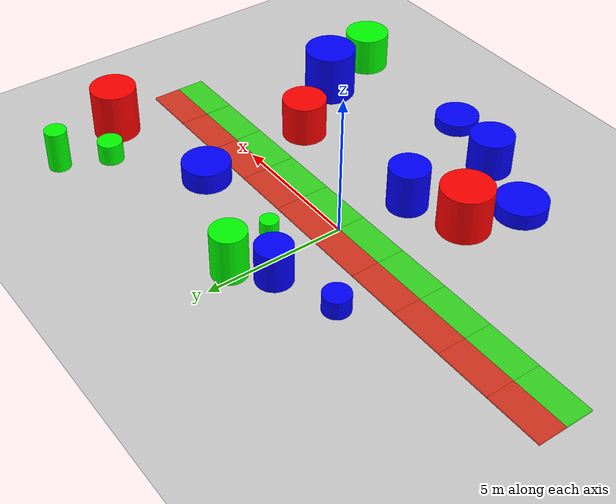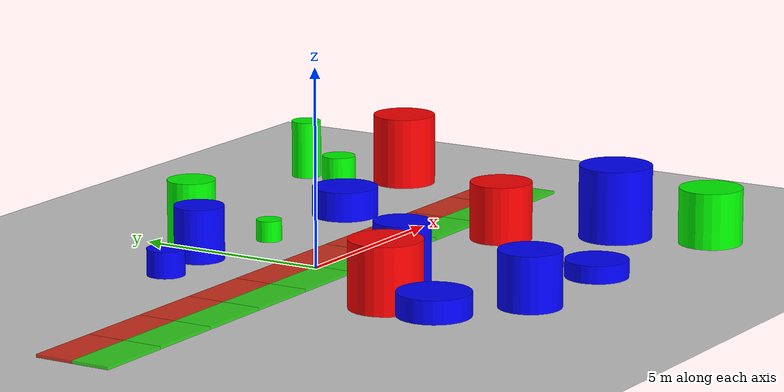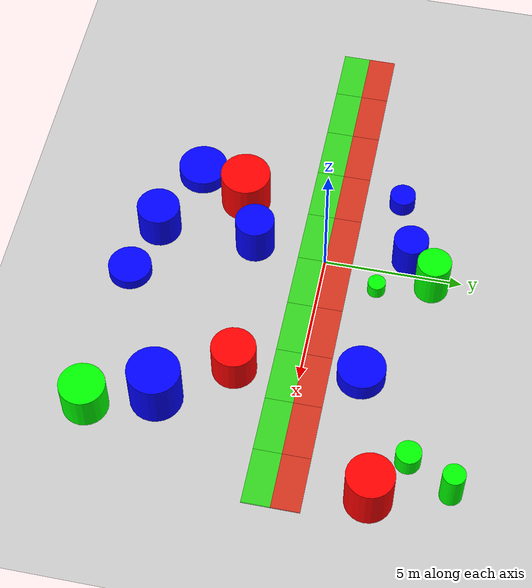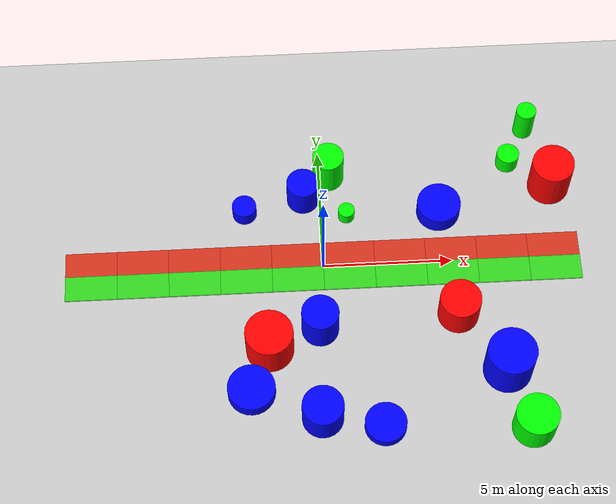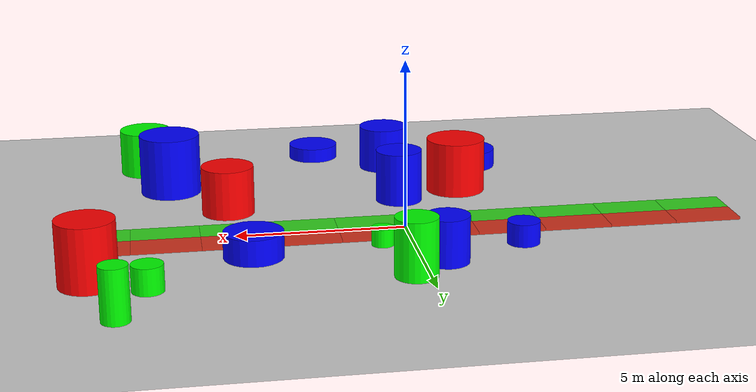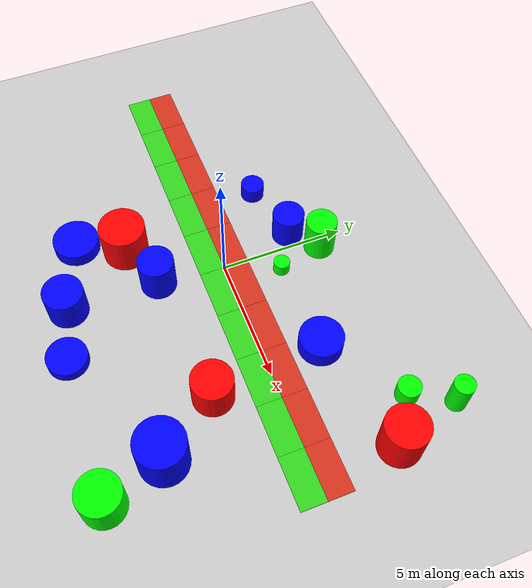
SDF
<sdf version="1.9">
 <world name="Moving_robot">
  <gravity>0 0 -9.8</gravity>
  <magnetic_field>6e-06 2.3e-05 -4.2e-05</magnetic_field>
  <atmosphere type="adiabatic"/>
  <physics type="ode">
   <max_step_size>0.1</max_step_size>
   <real_time_factor>1</real_time_factor>
   <real_time_update_rate>1000</real_time_update_rate>
  </physics>
  <plugin filename="libignition-gazebo-physics-system.so" name="ignition::gazebo::systems::Physics"/>
  <plugin filename="ignition-gazebo-user-commands-system" name="ignition::gazebo::systems::UserCommands"/>
  <plugin filename="ignition-gazebo-scene-broadcaster-system" name="ignition::gazebo::systems::SceneBroadcaster"/>
  <scene><ambient>0.4 0.4 0.4 1</ambient><background>0.7 0.7 0.7 1</background><shadows>true</shadows></scene>
  <model name="ground_plane">
   <static>true</static>
   <link name="link">
    <collision name="collision">
     <geometry><plane><normal>0 0 1</normal><size>5 1</size></plane></geometry>
    </collision>
    <visual name="visual">
     <geometry><plane><normal>0 0 1</normal><size>100 100</size></plane></geometry>
     <material>
      <ambient>0.8 0.8 0.8 1</ambient>
      <diffuse>0.8 0.8 0.8 1</diffuse>
      <specular>0.8 0.8 0.8 1</specular>
     </material>
     <surface><contact><collide_bitmask>0x01</collide_bitmask></contact></surface>
    </visual>
    <inertial>
     <mass>1</mass>
     <inertia><ixx>1</ixx><ixy>0</ixy><ixz>0</ixz><iyy>1</iyy><iyz>0</iyz><izz>1</izz></inertia>
    </inertial>
   </link>
  </model>
  <light name="sun" type="directional">
   <pose>0 0 10 0 -0 0</pose>
   <intensity>1</intensity>
   <direction>-0.5 0.1 -0.9</direction>
   <diffuse>0.8 0.8 0.8 1</diffuse>
   <specular>0.2 0.2 0.2 1</specular>
   <attenuation>
    <range>1000</range>
    <linear>0.01</linear>
    <constant>0.90000000000000002</constant>
    <quadratic>0.001</quadratic>
   </attenuation>
   <spot><inner_angle>0</inner_angle><outer_angle>0</outer_angle><falloff>0</falloff></spot>
  </light>
  <model name="tile_0_0">
   <link name="tile_0_0">
    <inertial>
     <mass>0.31376100000000001</mass>
     <inertia>
      <ixx>0.0268159</ixx>
      <ixy>0</ixy>
      <ixz>0</ixz>
      <iyy>0.101261</iyy>
      <iyz>0</iyz>
      <izz>0.12673899999999999</izz>
     </inertia>
    </inertial>
    <visual name="visual">
     <geometry><box><size>2 1 0.1</size></box></geometry>
     <material>
      <ambient>0.1 0.9 0 0.8</ambient>
      <diffuse>0.1 0.9 0 0.8</diffuse>
      <specular>0.1 0.9 0 0.8</specular>
     </material>
    </visual>
    <collision name="collision">
     <geometry><box><size>2 1 0.1</size></box></geometry>
     <surface>
      <friction>
       <ode><mu>100</mu><mu2>100</mu2><fdir1>0 0 0</fdir1><slip1>0</slip1><slip2>0</slip2></ode>
       <torsional>
        <coefficient>1</coefficient>
        <patch_radius>0</patch_radius>
        <surface_radius>0</surface_radius>
        <use_patch_radius>true</use_patch_radius>
        <ode><slip>0</slip></ode>
       </torsional>
      </friction>
      <bounce><restitution_coefficient>0</restitution_coefficient><threshold>1000000</threshold></bounce>
      <contact>
       <collide_without_contact>false</collide_without_contact>
       <collide_without_contact_bitmask>1</collide_without_contact_bitmask>
       <collide_bitmask>1</collide_bitmask>
       <ode>
        <soft_cfm>0</soft_cfm>
        <soft_erp>0.20000000000000001</soft_erp>
        <kp>10000000000000</kp>
        <kd>1</kd>
        <max_vel>0.01</max_vel>
        <min_depth>0</min_depth>
       </ode>
       <bullet>
        <split_impulse>true</split_impulse>
        <split_impulse_penetration_threshold>-0.01</split_impulse_penetration_threshold>
        <soft_cfm>0</soft_cfm>
        <soft_erp>0.20000000000000001</soft_erp>
        <kp>10000000000000</kp>
        <kd>1</kd>
       </bullet>
      </contact>
     </surface>
    </collision>
   </link>
   <static>false</static>
   <pose>-9 -0.5 0 0 0 0</pose>
  </model>
  <model name="tile_0_1">
   <link name="tile_0_1">
    <inertial>
     <mass>0.31376100000000001</mass>
     <inertia>
      <ixx>0.0268159</ixx>
      <ixy>0</ixy>
      <ixz>0</ixz>
      <iyy>0.101261</iyy>
      <iyz>0</iyz>
      <izz>0.12673899999999999</izz>
     </inertia>
    </inertial>
    <visual name="visual">
     <geometry><box><size>2 1 0.1</size></box></geometry>
     <material>
      <ambient>0.9 0.1 0 0.8</ambient>
      <diffuse>0.9 0.1 0 0.8</diffuse>
      <specular>0.9 0.1 0 0.8</specular>
     </material>
    </visual>
    <collision name="collision">
     <geometry><box><size>2 1 0.1</size></box></geometry>
     <surface>
      <friction>
       <ode><mu>100</mu><mu2>50</mu2><fdir1>0 0 0</fdir1><slip1>0</slip1><slip2>0</slip2></ode>
       <torsional>
        <coefficient>1</coefficient>
        <patch_radius>0</patch_radius>
        <surface_radius>0</surface_radius>
        <use_patch_radius>true</use_patch_radius>
        <ode><slip>0</slip></ode>
       </torsional>
      </friction>
      <bounce><restitution_coefficient>0</restitution_coefficient><threshold>1000000</threshold></bounce>
      <contact>
       <collide_without_contact>false</collide_without_contact>
       <collide_without_contact_bitmask>1</collide_without_contact_bitmask>
       <collide_bitmask>1</collide_bitmask>
       <ode>
        <soft_cfm>0</soft_cfm>
        <soft_erp>0.20000000000000001</soft_erp>
        <kp>10000000000000</kp>
        <kd>1</kd>
        <max_vel>0.01</max_vel>
        <min_depth>0</min_depth>
       </ode>
       <bullet>
        <split_impulse>true</split_impulse>
        <split_impulse_penetration_threshold>-0.01</split_impulse_penetration_threshold>
        <soft_cfm>0</soft_cfm>
        <soft_erp>0.20000000000000001</soft_erp>
        <kp>10000000000000</kp>
        <kd>1</kd>
       </bullet>
      </contact>
     </surface>
    </collision>
   </link>
   <static>false</static>
   <pose>-9 0.5 0 0 0 0</pose>
  </model>
  <model name="tile_1_0">
   <link name="tile_1_0">
    <inertial>
     <mass>0.31376100000000001</mass>
     <inertia>
      <ixx>0.0268159</ixx>
      <ixy>0</ixy>
      <ixz>0</ixz>
      <iyy>0.101261</iyy>
      <iyz>0</iyz>
      <izz>0.12673899999999999</izz>
     </inertia>
    </inertial>
    <visual name="visual">
     <geometry><box><size>2 1 0.1</size></box></geometry>
     <material>
      <ambient>0.1 0.9 0 0.8</ambient>
      <diffuse>0.1 0.9 0 0.8</diffuse>
      <specular>0.1 0.9 0 0.8</specular>
     </material>
    </visual>
    <collision name="collision">
     <geometry><box><size>2 1 0.1</size></box></geometry>
     <surface>
      <friction>
       <ode><mu>100</mu><mu2>100</mu2><fdir1>0 0 0</fdir1><slip1>0</slip1><slip2>0</slip2></ode>
       <torsional>
        <coefficient>1</coefficient>
        <patch_radius>0</patch_radius>
        <surface_radius>0</surface_radius>
        <use_patch_radius>true</use_patch_radius>
        <ode><slip>0</slip></ode>
       </torsional>
      </friction>
      <bounce><restitution_coefficient>0</restitution_coefficient><threshold>1000000</threshold></bounce>
      <contact>
       <collide_without_contact>false</collide_without_contact>
       <collide_without_contact_bitmask>1</collide_without_contact_bitmask>
       <collide_bitmask>1</collide_bitmask>
       <ode>
        <soft_cfm>0</soft_cfm>
        <soft_erp>0.20000000000000001</soft_erp>
        <kp>10000000000000</kp>
        <kd>1</kd>
        <max_vel>0.01</max_vel>
        <min_depth>0</min_depth>
       </ode>
       <bullet>
        <split_impulse>true</split_impulse>
        <split_impulse_penetration_threshold>-0.01</split_impulse_penetration_threshold>
        <soft_cfm>0</soft_cfm>
        <soft_erp>0.20000000000000001</soft_erp>
        <kp>10000000000000</kp>
        <kd>1</kd>
       </bullet>
      </contact>
     </surface>
    </collision>
   </link>
   <static>false</static>
   <pose>-7 -0.5 0 0 0 0</pose>
  </model>
  <model name="tile_1_1">
   <link name="tile_1_1">
    <inertial>
     <mass>0.31376100000000001</mass>
     <inertia>
      <ixx>0.0268159</ixx>
      <ixy>0</ixy>
      <ixz>0</ixz>
      <iyy>0.101261</iyy>
      <iyz>0</iyz>
      <izz>0.12673899999999999</izz>
     </inertia>
    </inertial>
    <visual name="visual">
     <geometry><box><size>2 1 0.1</size></box></geometry>
     <material>
      <ambient>0.9 0.1 0 0.8</ambient>
      <diffuse>0.9 0.1 0 0.8</diffuse>
      <specular>0.9 0.1 0 0.8</specular>
     </material>
    </visual>
    <collision name="collision">
     <geometry><box><size>2 1 0.1</size></box></geometry>
     <surface>
      <friction>
       <ode><mu>100</mu><mu2>50</mu2><fdir1>0 0 0</fdir1><slip1>0</slip1><slip2>0</slip2></ode>
       <torsional>
        <coefficient>1</coefficient>
        <patch_radius>0</patch_radius>
        <surface_radius>0</surface_radius>
        <use_patch_radius>true</use_patch_radius>
        <ode><slip>0</slip></ode>
       </torsional>
      </friction>
      <bounce><restitution_coefficient>0</restitution_coefficient><threshold>1000000</threshold></bounce>
      <contact>
       <collide_without_contact>false</collide_without_contact>
       <collide_without_contact_bitmask>1</collide_without_contact_bitmask>
       <collide_bitmask>1</collide_bitmask>
       <ode>
        <soft_cfm>0</soft_cfm>
        <soft_erp>0.20000000000000001</soft_erp>
        <kp>10000000000000</kp>
        <kd>1</kd>
        <max_vel>0.01</max_vel>
        <min_depth>0</min_depth>
       </ode>
       <bullet>
        <split_impulse>true</split_impulse>
        <split_impulse_penetration_threshold>-0.01</split_impulse_penetration_threshold>
        <soft_cfm>0</soft_cfm>
        <soft_erp>0.20000000000000001</soft_erp>
        <kp>10000000000000</kp>
        <kd>1</kd>
       </bullet>
      </contact>
     </surface>
    </collision>
   </link>
   <static>false</static>
   <pose>-7 0.5 0 0 0 0</pose>
  </model>
  <model name="tile_2_0">
   <link name="tile_2_0">
    <inertial>
     <mass>0.31376100000000001</mass>
     <inertia>
      <ixx>0.0268159</ixx>
      <ixy>0</ixy>
      <ixz>0</ixz>
      <iyy>0.101261</iyy>
      <iyz>0</iyz>
      <izz>0.12673899999999999</izz>
     </inertia>
    </inertial>
    <visual name="visual">
     <geometry><box><size>2 1 0.1</size></box></geometry>
     <material>
      <ambient>0.1 0.9 0 0.8</ambient>
      <diffuse>0.1 0.9 0 0.8</diffuse>
      <specular>0.1 0.9 0 0.8</specular>
     </material>
    </visual>
    <collision name="collision">
     <geometry><box><size>2 1 0.1</size></box></geometry>
     <surface>
      <friction>
       <ode><mu>100</mu><mu2>100</mu2><fdir1>0 0 0</fdir1><slip1>0</slip1><slip2>0</slip2></ode>
       <torsional>
        <coefficient>1</coefficient>
        <patch_radius>0</patch_radius>
        <surface_radius>0</surface_radius>
        <use_patch_radius>true</use_patch_radius>
        <ode><slip>0</slip></ode>
       </torsional>
      </friction>
      <bounce><restitution_coefficient>0</restitution_coefficient><threshold>1000000</threshold></bounce>
      <contact>
       <collide_without_contact>false</collide_without_contact>
       <collide_without_contact_bitmask>1</collide_without_contact_bitmask>
       <collide_bitmask>1</collide_bitmask>
       <ode>
        <soft_cfm>0</soft_cfm>
        <soft_erp>0.20000000000000001</soft_erp>
        <kp>10000000000000</kp>
        <kd>1</kd>
        <max_vel>0.01</max_vel>
        <min_depth>0</min_depth>
       </ode>
       <bullet>
        <split_impulse>true</split_impulse>
        <split_impulse_penetration_threshold>-0.01</split_impulse_penetration_threshold>
        <soft_cfm>0</soft_cfm>
        <soft_erp>0.20000000000000001</soft_erp>
        <kp>10000000000000</kp>
        <kd>1</kd>
       </bullet>
      </contact>
     </surface>
    </collision>
   </link>
   <static>false</static>
   <pose>-5 -0.5 0 0 0 0</pose>
  </model>
  <model name="tile_2_1">
   <link name="tile_2_1">
    <inertial>
     <mass>0.31376100000000001</mass>
     <inertia>
      <ixx>0.0268159</ixx>
      <ixy>0</ixy>
      <ixz>0</ixz>
      <iyy>0.101261</iyy>
      <iyz>0</iyz>
      <izz>0.12673899999999999</izz>
     </inertia>
    </inertial>
    <visual name="visual">
     <geometry><box><size>2 1 0.1</size></box></geometry>
     <material>
      <ambient>0.9 0.1 0 0.8</ambient>
      <diffuse>0.9 0.1 0 0.8</diffuse>
      <specular>0.9 0.1 0 0.8</specular>
     </material>
    </visual>
    <collision name="collision">
     <geometry><box><size>2 1 0.1</size></box></geometry>
     <surface>
      <friction>
       <ode><mu>100</mu><mu2>50</mu2><fdir1>0 0 0</fdir1><slip1>0</slip1><slip2>0</slip2></ode>
       <torsional>
        <coefficient>1</coefficient>
        <patch_radius>0</patch_radius>
        <surface_radius>0</surface_radius>
        <use_patch_radius>true</use_patch_radius>
        <ode><slip>0</slip></ode>
       </torsional>
      </friction>
      <bounce><restitution_coefficient>0</restitution_coefficient><threshold>1000000</threshold></bounce>
      <contact>
       <collide_without_contact>false</collide_without_contact>
       <collide_without_contact_bitmask>1</collide_without_contact_bitmask>
       <collide_bitmask>1</collide_bitmask>
       <ode>
        <soft_cfm>0</soft_cfm>
        <soft_erp>0.20000000000000001</soft_erp>
        <kp>10000000000000</kp>
        <kd>1</kd>
        <max_vel>0.01</max_vel>
        <min_depth>0</min_depth>
       </ode>
       <bullet>
        <split_impulse>true</split_impulse>
        <split_impulse_penetration_threshold>-0.01</split_impulse_penetration_threshold>
        <soft_cfm>0</soft_cfm>
        <soft_erp>0.20000000000000001</soft_erp>
        <kp>10000000000000</kp>
        <kd>1</kd>
       </bullet>
      </contact>
     </surface>
    </collision>
   </link>
   <static>false</static>
   <pose>-5 0.5 0 0 0 0</pose>
  </model>
  <model name="tile_3_0">
   <link name="tile_3_0">
    <inertial>
     <mass>0.31376100000000001</mass>
     <inertia>
      <ixx>0.0268159</ixx>
      <ixy>0</ixy>
      <ixz>0</ixz>
      <iyy>0.101261</iyy>
      <iyz>0</iyz>
      <izz>0.12673899999999999</izz>
     </inertia>
    </inertial>
    <visual name="visual">
     <geometry><box><size>2 1 0.1</size></box></geometry>
     <material>
      <ambient>0.1 0.9 0 0.8</ambient>
      <diffuse>0.1 0.9 0 0.8</diffuse>
      <specular>0.1 0.9 0 0.8</specular>
     </material>
    </visual>
    <collision name="collision">
     <geometry><box><size>2 1 0.1</size></box></geometry>
     <surface>
      <friction>
       <ode><mu>100</mu><mu2>100</mu2><fdir1>0 0 0</fdir1><slip1>0</slip1><slip2>0</slip2></ode>
       <torsional>
        <coefficient>1</coefficient>
        <patch_radius>0</patch_radius>
        <surface_radius>0</surface_radius>
        <use_patch_radius>true</use_patch_radius>
        <ode><slip>0</slip></ode>
       </torsional>
      </friction>
      <bounce><restitution_coefficient>0</restitution_coefficient><threshold>1000000</threshold></bounce>
      <contact>
       <collide_without_contact>false</collide_without_contact>
       <collide_without_contact_bitmask>1</collide_without_contact_bitmask>
       <collide_bitmask>1</collide_bitmask>
       <ode>
        <soft_cfm>0</soft_cfm>
        <soft_erp>0.20000000000000001</soft_erp>
        <kp>10000000000000</kp>
        <kd>1</kd>
        <max_vel>0.01</max_vel>
        <min_depth>0</min_depth>
       </ode>
       <bullet>
        <split_impulse>true</split_impulse>
        <split_impulse_penetration_threshold>-0.01</split_impulse_penetration_threshold>
        <soft_cfm>0</soft_cfm>
        <soft_erp>0.20000000000000001</soft_erp>
        <kp>10000000000000</kp>
        <kd>1</kd>
       </bullet>
      </contact>
     </surface>
    </collision>
   </link>
   <static>false</static>
   <pose>-3 -0.5 0 0 0 0</pose>
  </model>
  <model name="tile_3_1">
   <link name="tile_3_1">
    <inertial>
     <mass>0.31376100000000001</mass>
     <inertia>
      <ixx>0.0268159</ixx>
      <ixy>0</ixy>
      <ixz>0</ixz>
      <iyy>0.101261</iyy>
      <iyz>0</iyz>
      <izz>0.12673899999999999</izz>
     </inertia>
    </inertial>
    <visual name="visual">
     <geometry><box><size>2 1 0.1</size></box></geometry>
     <material>
      <ambient>0.9 0.1 0 0.8</ambient>
      <diffuse>0.9 0.1 0 0.8</diffuse>
      <specular>0.9 0.1 0 0.8</specular>
     </material>
    </visual>
    <collision name="collision">
     <geometry><box><size>2 1 0.1</size></box></geometry>
     <surface>
      <friction>
       <ode><mu>100</mu><mu2>50</mu2><fdir1>0 0 0</fdir1><slip1>0</slip1><slip2>0</slip2></ode>
       <torsional>
        <coefficient>1</coefficient>
        <patch_radius>0</patch_radius>
        <surface_radius>0</surface_radius>
        <use_patch_radius>true</use_patch_radius>
        <ode><slip>0</slip></ode>
       </torsional>
      </friction>
      <bounce><restitution_coefficient>0</restitution_coefficient><threshold>1000000</threshold></bounce>
      <contact>
       <collide_without_contact>false</collide_without_contact>
       <collide_without_contact_bitmask>1</collide_without_contact_bitmask>
       <collide_bitmask>1</collide_bitmask>
       <ode>
        <soft_cfm>0</soft_cfm>
        <soft_erp>0.20000000000000001</soft_erp>
        <kp>10000000000000</kp>
        <kd>1</kd>
        <max_vel>0.01</max_vel>
        <min_depth>0</min_depth>
       </ode>
       <bullet>
        <split_impulse>true</split_impulse>
        <split_impulse_penetration_threshold>-0.01</split_impulse_penetration_threshold>
        <soft_cfm>0</soft_cfm>
        <soft_erp>0.20000000000000001</soft_erp>
        <kp>10000000000000</kp>
        <kd>1</kd>
       </bullet>
      </contact>
     </surface>
    </collision>
   </link>
   <static>false</static>
   <pose>-3 0.5 0 0 0 0</pose>
  </model>
  <model name="tile_4_0">
   <link name="tile_4_0">
    <inertial>
     <mass>0.31376100000000001</mass>
     <inertia>
      <ixx>0.0268159</ixx>
      <ixy>0</ixy>
      <ixz>0</ixz>
      <iyy>0.101261</iyy>
      <iyz>0</iyz>
      <izz>0.12673899999999999</izz>
     </inertia>
    </inertial>
    <visual name="visual">
     <geometry><box><size>2 1 0.1</size></box></geometry>
     <material>
      <ambient>0.1 0.9 0 0.8</ambient>
      <diffuse>0.1 0.9 0 0.8</diffuse>
      <specular>0.1 0.9 0 0.8</specular>
     </material>
    </visual>
    <collision name="collision">
     <geometry><box><size>2 1 0.1</size></box></geometry>
     <surface>
      <friction>
       <ode><mu>100</mu><mu2>100</mu2><fdir1>0 0 0</fdir1><slip1>0</slip1><slip2>0</slip2></ode>
       <torsional>
        <coefficient>1</coefficient>
        <patch_radius>0</patch_radius>
        <surface_radius>0</surface_radius>
        <use_patch_radius>true</use_patch_radius>
        <ode><slip>0</slip></ode>
       </torsional>
      </friction>
      <bounce><restitution_coefficient>0</restitution_coefficient><threshold>1000000</threshold></bounce>
      <contact>
       <collide_without_contact>false</collide_without_contact>
       <collide_without_contact_bitmask>1</collide_without_contact_bitmask>
       <collide_bitmask>1</collide_bitmask>
       <ode>
        <soft_cfm>0</soft_cfm>
        <soft_erp>0.20000000000000001</soft_erp>
        <kp>10000000000000</kp>
        <kd>1</kd>
        <max_vel>0.01</max_vel>
        <min_depth>0</min_depth>
       </ode>
       <bullet>
        <split_impulse>true</split_impulse>
        <split_impulse_penetration_threshold>-0.01</split_impulse_penetration_threshold>
        <soft_cfm>0</soft_cfm>
        <soft_erp>0.20000000000000001</soft_erp>
        <kp>10000000000000</kp>
        <kd>1</kd>
       </bullet>
      </contact>
     </surface>
    </collision>
   </link>
   <static>false</static>
   <pose>-1 -0.5 0 0 0 0</pose>
  </model>
  <model name="tile_4_1">
   <link name="tile_4_1">
    <inertial>
     <mass>0.31376100000000001</mass>
     <inertia>
      <ixx>0.0268159</ixx>
      <ixy>0</ixy>
      <ixz>0</ixz>
      <iyy>0.101261</iyy>
      <iyz>0</iyz>
      <izz>0.12673899999999999</izz>
     </inertia>
    </inertial>
    <visual name="visual">
     <geometry><box><size>2 1 0.1</size></box></geometry>
     <material>
      <ambient>0.9 0.1 0 0.8</ambient>
      <diffuse>0.9 0.1 0 0.8</diffuse>
      <specular>0.9 0.1 0 0.8</specular>
     </material>
    </visual>
    <collision name="collision">
     <geometry><box><size>2 1 0.1</size></box></geometry>
     <surface>
      <friction>
       <ode><mu>100</mu><mu2>50</mu2><fdir1>0 0 0</fdir1><slip1>0</slip1><slip2>0</slip2></ode>
       <torsional>
        <coefficient>1</coefficient>
        <patch_radius>0</patch_radius>
        <surface_radius>0</surface_radius>
        <use_patch_radius>true</use_patch_radius>
        <ode><slip>0</slip></ode>
       </torsional>
      </friction>
      <bounce><restitution_coefficient>0</restitution_coefficient><threshold>1000000</threshold></bounce>
      <contact>
       <collide_without_contact>false</collide_without_contact>
       <collide_without_contact_bitmask>1</collide_without_contact_bitmask>
       <collide_bitmask>1</collide_bitmask>
       <ode>
        <soft_cfm>0</soft_cfm>
        <soft_erp>0.20000000000000001</soft_erp>
        <kp>10000000000000</kp>
        <kd>1</kd>
        <max_vel>0.01</max_vel>
        <min_depth>0</min_depth>
       </ode>
       <bullet>
        <split_impulse>true</split_impulse>
        <split_impulse_penetration_threshold>-0.01</split_impulse_penetration_threshold>
        <soft_cfm>0</soft_cfm>
        <soft_erp>0.20000000000000001</soft_erp>
        <kp>10000000000000</kp>
        <kd>1</kd>
       </bullet>
      </contact>
     </surface>
    </collision>
   </link>
   <static>false</static>
   <pose>-1 0.5 0 0 0 0</pose>
  </model>
  <model name="tile_5_0">
   <link name="tile_5_0">
    <inertial>
     <mass>0.31376100000000001</mass>
     <inertia>
      <ixx>0.0268159</ixx>
      <ixy>0</ixy>
      <ixz>0</ixz>
      <iyy>0.101261</iyy>
      <iyz>0</iyz>
      <izz>0.12673899999999999</izz>
     </inertia>
    </inertial>
    <visual name="visual">
     <geometry><box><size>2 1 0.1</size></box></geometry>
     <material>
      <ambient>0.1 0.9 0 0.8</ambient>
      <diffuse>0.1 0.9 0 0.8</diffuse>
      <specular>0.1 0.9 0 0.8</specular>
     </material>
    </visual>
    <collision name="collision">
     <geometry><box><size>2 1 0.1</size></box></geometry>
     <surface>
      <friction>
       <ode><mu>100</mu><mu2>100</mu2><fdir1>0 0 0</fdir1><slip1>0</slip1><slip2>0</slip2></ode>
       <torsional>
        <coefficient>1</coefficient>
        <patch_radius>0</patch_radius>
        <surface_radius>0</surface_radius>
        <use_patch_radius>true</use_patch_radius>
        <ode><slip>0</slip></ode>
       </torsional>
      </friction>
      <bounce><restitution_coefficient>0</restitution_coefficient><threshold>1000000</threshold></bounce>
      <contact>
       <collide_without_contact>false</collide_without_contact>
       <collide_without_contact_bitmask>1</collide_without_contact_bitmask>
       <collide_bitmask>1</collide_bitmask>
       <ode>
        <soft_cfm>0</soft_cfm>
        <soft_erp>0.20000000000000001</soft_erp>
        <kp>10000000000000</kp>
        <kd>1</kd>
        <max_vel>0.01</max_vel>
        <min_depth>0</min_depth>
       </ode>
       <bullet>
        <split_impulse>true</split_impulse>
        <split_impulse_penetration_threshold>-0.01</split_impulse_penetration_threshold>
        <soft_cfm>0</soft_cfm>
        <soft_erp>0.20000000000000001</soft_erp>
        <kp>10000000000000</kp>
        <kd>1</kd>
       </bullet>
      </contact>
     </surface>
    </collision>
   </link>
   <static>false</static>
   <pose>1 -0.5 0 0 0 0</pose>
  </model>
  <model name="tile_5_1">
   <link name="tile_5_1">
    <inertial>
     <mass>0.31376100000000001</mass>
     <inertia>
      <ixx>0.0268159</ixx>
      <ixy>0</ixy>
      <ixz>0</ixz>
      <iyy>0.101261</iyy>
      <iyz>0</iyz>
      <izz>0.12673899999999999</izz>
     </inertia>
    </inertial>
    <visual name="visual">
     <geometry><box><size>2 1 0.1</size></box></geometry>
     <material>
      <ambient>0.9 0.1 0 0.8</ambient>
      <diffuse>0.9 0.1 0 0.8</diffuse>
      <specular>0.9 0.1 0 0.8</specular>
     </material>
    </visual>
    <collision name="collision">
     <geometry><box><size>2 1 0.1</size></box></geometry>
     <surface>
      <friction>
       <ode><mu>100</mu><mu2>50</mu2><fdir1>0 0 0</fdir1><slip1>0</slip1><slip2>0</slip2></ode>
       <torsional>
        <coefficient>1</coefficient>
        <patch_radius>0</patch_radius>
        <surface_radius>0</surface_radius>
        <use_patch_radius>true</use_patch_radius>
        <ode><slip>0</slip></ode>
       </torsional>
      </friction>
      <bounce><restitution_coefficient>0</restitution_coefficient><threshold>1000000</threshold></bounce>
      <contact>
       <collide_without_contact>false</collide_without_contact>
       <collide_without_contact_bitmask>1</collide_without_contact_bitmask>
       <collide_bitmask>1</collide_bitmask>
       <ode>
        <soft_cfm>0</soft_cfm>
        <soft_erp>0.20000000000000001</soft_erp>
        <kp>10000000000000</kp>
        <kd>1</kd>
        <max_vel>0.01</max_vel>
        <min_depth>0</min_depth>
       </ode>
       <bullet>
        <split_impulse>true</split_impulse>
        <split_impulse_penetration_threshold>-0.01</split_impulse_penetration_threshold>
        <soft_cfm>0</soft_cfm>
        <soft_erp>0.20000000000000001</soft_erp>
        <kp>10000000000000</kp>
        <kd>1</kd>
       </bullet>
      </contact>
     </surface>
    </collision>
   </link>
   <static>false</static>
   <pose>1 0.5 0 0 0 0</pose>
  </model>
  <model name="tile_6_0">
   <link name="tile_6_0">
    <inertial>
     <mass>0.31376100000000001</mass>
     <inertia>
      <ixx>0.0268159</ixx>
      <ixy>0</ixy>
      <ixz>0</ixz>
      <iyy>0.101261</iyy>
      <iyz>0</iyz>
      <izz>0.12673899999999999</izz>
     </inertia>
    </inertial>
    <visual name="visual">
     <geometry><box><size>2 1 0.1</size></box></geometry>
     <material>
      <ambient>0.1 0.9 0 0.8</ambient>
      <diffuse>0.1 0.9 0 0.8</diffuse>
      <specular>0.1 0.9 0 0.8</specular>
     </material>
    </visual>
    <collision name="collision">
     <geometry><box><size>2 1 0.1</size></box></geometry>
     <surface>
      <friction>
       <ode><mu>100</mu><mu2>100</mu2><fdir1>0 0 0</fdir1><slip1>0</slip1><slip2>0</slip2></ode>
       <torsional>
        <coefficient>1</coefficient>
        <patch_radius>0</patch_radius>
        <surface_radius>0</surface_radius>
        <use_patch_radius>true</use_patch_radius>
        <ode><slip>0</slip></ode>
       </torsional>
      </friction>
      <bounce><restitution_coefficient>0</restitution_coefficient><threshold>1000000</threshold></bounce>
      <contact>
       <collide_without_contact>false</collide_without_contact>
       <collide_without_contact_bitmask>1</collide_without_contact_bitmask>
       <collide_bitmask>1</collide_bitmask>
       <ode>
        <soft_cfm>0</soft_cfm>
        <soft_erp>0.20000000000000001</soft_erp>
        <kp>10000000000000</kp>
        <kd>1</kd>
        <max_vel>0.01</max_vel>
        <min_depth>0</min_depth>
       </ode>
       <bullet>
        <split_impulse>true</split_impulse>
        <split_impulse_penetration_threshold>-0.01</split_impulse_penetration_threshold>
        <soft_cfm>0</soft_cfm>
        <soft_erp>0.20000000000000001</soft_erp>
        <kp>10000000000000</kp>
        <kd>1</kd>
       </bullet>
      </contact>
     </surface>
    </collision>
   </link>
   <static>false</static>
   <pose>3 -0.5 0 0 0 0</pose>
  </model>
  <model name="tile_6_1">
   <link name="tile_6_1">
    <inertial>
     <mass>0.31376100000000001</mass>
     <inertia>
      <ixx>0.0268159</ixx>
      <ixy>0</ixy>
      <ixz>0</ixz>
      <iyy>0.101261</iyy>
      <iyz>0</iyz>
      <izz>0.12673899999999999</izz>
     </inertia>
    </inertial>
    <visual name="visual">
     <geometry><box><size>2 1 0.1</size></box></geometry>
     <material>
      <ambient>0.9 0.1 0 0.8</ambient>
      <diffuse>0.9 0.1 0 0.8</diffuse>
      <specular>0.9 0.1 0 0.8</specular>
     </material>
    </visual>
    <collision name="collision">
     <geometry><box><size>2 1 0.1</size></box></geometry>
     <surface>
      <friction>
       <ode><mu>100</mu><mu2>50</mu2><fdir1>0 0 0</fdir1><slip1>0</slip1><slip2>0</slip2></ode>
       <torsional>
        <coefficient>1</coefficient>
        <patch_radius>0</patch_radius>
        <surface_radius>0</surface_radius>
        <use_patch_radius>true</use_patch_radius>
        <ode><slip>0</slip></ode>
       </torsional>
      </friction>
      <bounce><restitution_coefficient>0</restitution_coefficient><threshold>1000000</threshold></bounce>
      <contact>
       <collide_without_contact>false</collide_without_contact>
       <collide_without_contact_bitmask>1</collide_without_contact_bitmask>
       <collide_bitmask>1</collide_bitmask>
       <ode>
        <soft_cfm>0</soft_cfm>
        <soft_erp>0.20000000000000001</soft_erp>
        <kp>10000000000000</kp>
        <kd>1</kd>
        <max_vel>0.01</max_vel>
        <min_depth>0</min_depth>
       </ode>
       <bullet>
        <split_impulse>true</split_impulse>
        <split_impulse_penetration_threshold>-0.01</split_impulse_penetration_threshold>
        <soft_cfm>0</soft_cfm>
        <soft_erp>0.20000000000000001</soft_erp>
        <kp>10000000000000</kp>
        <kd>1</kd>
       </bullet>
      </contact>
     </surface>
    </collision>
   </link>
   <static>false</static>
   <pose>3 0.5 0 0 0 0</pose>
  </model>
  <model name="tile_7_0">
   <link name="tile_7_0">
    <inertial>
     <mass>0.31376100000000001</mass>
     <inertia>
      <ixx>0.0268159</ixx>
      <ixy>0</ixy>
      <ixz>0</ixz>
      <iyy>0.101261</iyy>
      <iyz>0</iyz>
      <izz>0.12673899999999999</izz>
     </inertia>
    </inertial>
    <visual name="visual">
     <geometry><box><size>2 1 0.1</size></box></geometry>
     <material>
      <ambient>0.1 0.9 0 0.8</ambient>
      <diffuse>0.1 0.9 0 0.8</diffuse>
      <specular>0.1 0.9 0 0.8</specular>
     </material>
    </visual>
    <collision name="collision">
     <geometry><box><size>2 1 0.1</size></box></geometry>
     <surface>
      <friction>
       <ode><mu>100</mu><mu2>100</mu2><fdir1>0 0 0</fdir1><slip1>0</slip1><slip2>0</slip2></ode>
       <torsional>
        <coefficient>1</coefficient>
        <patch_radius>0</patch_radius>
        <surface_radius>0</surface_radius>
        <use_patch_radius>true</use_patch_radius>
        <ode><slip>0</slip></ode>
       </torsional>
      </friction>
      <bounce><restitution_coefficient>0</restitution_coefficient><threshold>1000000</threshold></bounce>
      <contact>
       <collide_without_contact>false</collide_without_contact>
       <collide_without_contact_bitmask>1</collide_without_contact_bitmask>
       <collide_bitmask>1</collide_bitmask>
       <ode>
        <soft_cfm>0</soft_cfm>
        <soft_erp>0.20000000000000001</soft_erp>
        <kp>10000000000000</kp>
        <kd>1</kd>
        <max_vel>0.01</max_vel>
        <min_depth>0</min_depth>
       </ode>
       <bullet>
        <split_impulse>true</split_impulse>
        <split_impulse_penetration_threshold>-0.01</split_impulse_penetration_threshold>
        <soft_cfm>0</soft_cfm>
        <soft_erp>0.20000000000000001</soft_erp>
        <kp>10000000000000</kp>
        <kd>1</kd>
       </bullet>
      </contact>
     </surface>
    </collision>
   </link>
   <static>false</static>
   <pose>5 -0.5 0 0 0 0</pose>
  </model>
  <model name="tile_7_1">
   <link name="tile_7_1">
    <inertial>
     <mass>0.31376100000000001</mass>
     <inertia>
      <ixx>0.0268159</ixx>
      <ixy>0</ixy>
      <ixz>0</ixz>
      <iyy>0.101261</iyy>
      <iyz>0</iyz>
      <izz>0.12673899999999999</izz>
     </inertia>
    </inertial>
    <visual name="visual">
     <geometry><box><size>2 1 0.1</size></box></geometry>
     <material>
      <ambient>0.9 0.1 0 0.8</ambient>
      <diffuse>0.9 0.1 0 0.8</diffuse>
      <specular>0.9 0.1 0 0.8</specular>
     </material>
    </visual>
    <collision name="collision">
     <geometry><box><size>2 1 0.1</size></box></geometry>
     <surface>
      <friction>
       <ode><mu>100</mu><mu2>50</mu2><fdir1>0 0 0</fdir1><slip1>0</slip1><slip2>0</slip2></ode>
       <torsional>
        <coefficient>1</coefficient>
        <patch_radius>0</patch_radius>
        <surface_radius>0</surface_radius>
        <use_patch_radius>true</use_patch_radius>
        <ode><slip>0</slip></ode>
       </torsional>
      </friction>
      <bounce><restitution_coefficient>0</restitution_coefficient><threshold>1000000</threshold></bounce>
      <contact>
       <collide_without_contact>false</collide_without_contact>
       <collide_without_contact_bitmask>1</collide_without_contact_bitmask>
       <collide_bitmask>1</collide_bitmask>
       <ode>
        <soft_cfm>0</soft_cfm>
        <soft_erp>0.20000000000000001</soft_erp>
        <kp>10000000000000</kp>
        <kd>1</kd>
        <max_vel>0.01</max_vel>
        <min_depth>0</min_depth>
       </ode>
       <bullet>
        <split_impulse>true</split_impulse>
        <split_impulse_penetration_threshold>-0.01</split_impulse_penetration_threshold>
        <soft_cfm>0</soft_cfm>
        <soft_erp>0.20000000000000001</soft_erp>
        <kp>10000000000000</kp>
        <kd>1</kd>
       </bullet>
      </contact>
     </surface>
    </collision>
   </link>
   <static>false</static>
   <pose>5 0.5 0 0 0 0</pose>
  </model>
  <model name="tile_8_0">
   <link name="tile_8_0">
    <inertial>
     <mass>0.31376100000000001</mass>
     <inertia>
      <ixx>0.0268159</ixx>
      <ixy>0</ixy>
      <ixz>0</ixz>
      <iyy>0.101261</iyy>
      <iyz>0</iyz>
      <izz>0.12673899999999999</izz>
     </inertia>
    </inertial>
    <visual name="visual">
     <geometry><box><size>2 1 0.1</size></box></geometry>
     <material>
      <ambient>0.1 0.9 0 0.8</ambient>
      <diffuse>0.1 0.9 0 0.8</diffuse>
      <specular>0.1 0.9 0 0.8</specular>
     </material>
    </visual>
    <collision name="collision">
     <geometry><box><size>2 1 0.1</size></box></geometry>
     <surface>
      <friction>
       <ode><mu>100</mu><mu2>100</mu2><fdir1>0 0 0</fdir1><slip1>0</slip1><slip2>0</slip2></ode>
       <torsional>
        <coefficient>1</coefficient>
        <patch_radius>0</patch_radius>
        <surface_radius>0</surface_radius>
        <use_patch_radius>true</use_patch_radius>
        <ode><slip>0</slip></ode>
       </torsional>
      </friction>
      <bounce><restitution_coefficient>0</restitution_coefficient><threshold>1000000</threshold></bounce>
      <contact>
       <collide_without_contact>false</collide_without_contact>
       <collide_without_contact_bitmask>1</collide_without_contact_bitmask>
       <collide_bitmask>1</collide_bitmask>
       <ode>
        <soft_cfm>0</soft_cfm>
        <soft_erp>0.20000000000000001</soft_erp>
        <kp>10000000000000</kp>
        <kd>1</kd>
        <max_vel>0.01</max_vel>
        <min_depth>0</min_depth>
       </ode>
       <bullet>
        <split_impulse>true</split_impulse>
        <split_impulse_penetration_threshold>-0.01</split_impulse_penetration_threshold>
        <soft_cfm>0</soft_cfm>
        <soft_erp>0.20000000000000001</soft_erp>
        <kp>10000000000000</kp>
        <kd>1</kd>
       </bullet>
      </contact>
     </surface>
    </collision>
   </link>
   <static>false</static>
   <pose>7 -0.5 0 0 0 0</pose>
  </model>
  <model name="tile_8_1">
   <link name="tile_8_1">
    <inertial>
     <mass>0.31376100000000001</mass>
     <inertia>
      <ixx>0.0268159</ixx>
      <ixy>0</ixy>
      <ixz>0</ixz>
      <iyy>0.101261</iyy>
      <iyz>0</iyz>
      <izz>0.12673899999999999</izz>
     </inertia>
    </inertial>
    <visual name="visual">
     <geometry><box><size>2 1 0.1</size></box></geometry>
     <material>
      <ambient>0.9 0.1 0 0.8</ambient>
      <diffuse>0.9 0.1 0 0.8</diffuse>
      <specular>0.9 0.1 0 0.8</specular>
     </material>
    </visual>
    <collision name="collision">
     <geometry><box><size>2 1 0.1</size></box></geometry>
     <surface>
      <friction>
       <ode><mu>100</mu><mu2>50</mu2><fdir1>0 0 0</fdir1><slip1>0</slip1><slip2>0</slip2></ode>
       <torsional>
        <coefficient>1</coefficient>
        <patch_radius>0</patch_radius>
        <surface_radius>0</surface_radius>
        <use_patch_radius>true</use_patch_radius>
        <ode><slip>0</slip></ode>
       </torsional>
      </friction>
      <bounce><restitution_coefficient>0</restitution_coefficient><threshold>1000000</threshold></bounce>
      <contact>
       <collide_without_contact>false</collide_without_contact>
       <collide_without_contact_bitmask>1</collide_without_contact_bitmask>
       <collide_bitmask>1</collide_bitmask>
       <ode>
        <soft_cfm>0</soft_cfm>
        <soft_erp>0.20000000000000001</soft_erp>
        <kp>10000000000000</kp>
        <kd>1</kd>
        <max_vel>0.01</max_vel>
        <min_depth>0</min_depth>
       </ode>
       <bullet>
        <split_impulse>true</split_impulse>
        <split_impulse_penetration_threshold>-0.01</split_impulse_penetration_threshold>
        <soft_cfm>0</soft_cfm>
        <soft_erp>0.20000000000000001</soft_erp>
        <kp>10000000000000</kp>
        <kd>1</kd>
       </bullet>
      </contact>
     </surface>
    </collision>
   </link>
   <static>false</static>
   <pose>7 0.5 0 0 0 0</pose>
  </model>
  <model name="tile_9_0">
   <link name="tile_9_0">
    <inertial>
     <mass>0.31376100000000001</mass>
     <inertia>
      <ixx>0.0268159</ixx>
      <ixy>0</ixy>
      <ixz>0</ixz>
      <iyy>0.101261</iyy>
      <iyz>0</iyz>
      <izz>0.12673899999999999</izz>
     </inertia>
    </inertial>
    <visual name="visual">
     <geometry><box><size>2 1 0.1</size></box></geometry>
     <material>
      <ambient>0.1 0.9 0 0.8</ambient>
      <diffuse>0.1 0.9 0 0.8</diffuse>
      <specular>0.1 0.9 0 0.8</specular>
     </material>
    </visual>
    <collision name="collision">
     <geometry><box><size>2 1 0.1</size></box></geometry>
     <surface>
      <friction>
       <ode><mu>100</mu><mu2>100</mu2><fdir1>0 0 0</fdir1><slip1>0</slip1><slip2>0</slip2></ode>
       <torsional>
        <coefficient>1</coefficient>
        <patch_radius>0</patch_radius>
        <surface_radius>0</surface_radius>
        <use_patch_radius>true</use_patch_radius>
        <ode><slip>0</slip></ode>
       </torsional>
      </friction>
      <bounce><restitution_coefficient>0</restitution_coefficient><threshold>1000000</threshold></bounce>
      <contact>
       <collide_without_contact>false</collide_without_contact>
       <collide_without_contact_bitmask>1</collide_without_contact_bitmask>
       <collide_bitmask>1</collide_bitmask>
       <ode>
        <soft_cfm>0</soft_cfm>
        <soft_erp>0.20000000000000001</soft_erp>
        <kp>10000000000000</kp>
        <kd>1</kd>
        <max_vel>0.01</max_vel>
        <min_depth>0</min_depth>
       </ode>
       <bullet>
        <split_impulse>true</split_impulse>
        <split_impulse_penetration_threshold>-0.01</split_impulse_penetration_threshold>
        <soft_cfm>0</soft_cfm>
        <soft_erp>0.20000000000000001</soft_erp>
        <kp>10000000000000</kp>
        <kd>1</kd>
       </bullet>
      </contact>
     </surface>
    </collision>
   </link>
   <static>false</static>
   <pose>9 -0.5 0 0 0 0</pose>
  </model>
  <model name="tile_9_1">
   <link name="tile_9_1">
    <inertial>
     <mass>0.31376100000000001</mass>
     <inertia>
      <ixx>0.0268159</ixx>
      <ixy>0</ixy>
      <ixz>0</ixz>
      <iyy>0.101261</iyy>
      <iyz>0</iyz>
      <izz>0.12673899999999999</izz>
     </inertia>
    </inertial>
    <visual name="visual">
     <geometry><box><size>2 1 0.1</size></box></geometry>
     <material>
      <ambient>0.9 0.1 0 0.8</ambient>
      <diffuse>0.9 0.1 0 0.8</diffuse>
      <specular>0.9 0.1 0 0.8</specular>
     </material>
    </visual>
    <collision name="collision">
     <geometry><box><size>2 1 0.1</size></box></geometry>
     <surface>
      <friction>
       <ode><mu>100</mu><mu2>50</mu2><fdir1>0 0 0</fdir1><slip1>0</slip1><slip2>0</slip2></ode>
       <torsional>
        <coefficient>1</coefficient>
        <patch_radius>0</patch_radius>
        <surface_radius>0</surface_radius>
        <use_patch_radius>true</use_patch_radius>
        <ode><slip>0</slip></ode>
       </torsional>
      </friction>
      <bounce><restitution_coefficient>0</restitution_coefficient><threshold>1000000</threshold></bounce>
      <contact>
       <collide_without_contact>false</collide_without_contact>
       <collide_without_contact_bitmask>1</collide_without_contact_bitmask>
       <collide_bitmask>1</collide_bitmask>
       <ode>
        <soft_cfm>0</soft_cfm>
        <soft_erp>0.20000000000000001</soft_erp>
        <kp>10000000000000</kp>
        <kd>1</kd>
        <max_vel>0.01</max_vel>
        <min_depth>0</min_depth>
       </ode>
       <bullet>
        <split_impulse>true</split_impulse>
        <split_impulse_penetration_threshold>-0.01</split_impulse_penetration_threshold>
        <soft_cfm>0</soft_cfm>
        <soft_erp>0.20000000000000001</soft_erp>
        <kp>10000000000000</kp>
        <kd>1</kd>
       </bullet>
      </contact>
     </surface>
    </collision>
   </link>
   <static>false</static>
   <pose>9 0.5 0 0 0 0</pose>
  </model>
  <model name="cyl_0">
   <pose>-2.93 -5.18 0.5 0 -0 0</pose>
   <link name="cylinder_link">
    <inertial>
     <inertia>
      <ixx>0.14580000000000001</ixx>
      <ixy>0</ixy>
      <ixz>0</ixz>
      <iyy>0.14580000000000001</iyy>
      <iyz>0</iyz>
      <izz>0.125</izz>
     </inertia>
     <mass>1</mass>
    </inertial>
    <collision name="cylinder_collision">
     <geometry><cylinder><radius>0.9</radius><length>0.58</length></cylinder></geometry>
    </collision>
    <visual name="cylinder_visual">
     <geometry><cylinder><radius>0.9</radius><length>0.58</length></cylinder></geometry>
     <material><ambient>0 0 1 1</ambient><diffuse>0 0 1 1</diffuse><specular>0 0 1 1</specular></material>
    </visual>
   </link>
   <static>false</static>
  </model>
  <model name="cyl_1">
   <pose>-0.25 -2.64 0.5 0 -0 0</pose>
   <link name="cylinder_link">
    <inertial>
     <inertia>
      <ixx>0.14580000000000001</ixx>
      <ixy>0</ixy>
      <ixz>0</ixz>
      <iyy>0.14580000000000001</iyy>
      <iyz>0</iyz>
      <izz>0.125</izz>
     </inertia>
     <mass>1</mass>
    </inertial>
    <collision name="cylinder_collision">
     <geometry><cylinder><radius>0.71</radius><length>2.18</length></cylinder></geometry>
    </collision>
    <visual name="cylinder_visual">
     <geometry><cylinder><radius>0.71</radius><length>2.18</length></cylinder></geometry>
     <material><ambient>0 0 1 1</ambient><diffuse>0 0 1 1</diffuse><specular>0 0 1 1</specular></material>
    </visual>
   </link>
   <static>false</static>
  </model>
  <model name="cyl_2">
   <pose>6.7 -4.66 0.5 0 -0 0</pose>
   <link name="cylinder_link">
    <inertial>
     <inertia>
      <ixx>0.14580000000000001</ixx>
      <ixy>0</ixy>
      <ixz>0</ixz>
      <iyy>0.14580000000000001</iyy>
      <iyz>0</iyz>
      <izz>0.125</izz>
     </inertia>
     <mass>1</mass>
    </inertial>
    <collision name="cylinder_collision">
     <geometry><cylinder><radius>0.93</radius><length>2.7</length></cylinder></geometry>
    </collision>
    <visual name="cylinder_visual">
     <geometry><cylinder><radius>0.93</radius><length>2.7</length></cylinder></geometry>
     <material><ambient>0 0 1 1</ambient><diffuse>0 0 1 1</diffuse><specular>0 0 1 1</specular></material>
    </visual>
   </link>
   <static>false</static>
  </model>
  <model name="cyl_3">
   <pose>0.38 3.95 0.5 0 -0 0</pose>
   <link name="cylinder_link">
    <inertial>
     <inertia>
      <ixx>0.14580000000000001</ixx>
      <ixy>0</ixy>
      <ixz>0</ixz>
      <iyy>0.14580000000000001</iyy>
      <iyz>0</iyz>
      <izz>0.125</izz>
     </inertia>
     <mass>1</mass>
    </inertial>
    <collision name="cylinder_collision">
     <geometry><cylinder><radius>0.61</radius><length>2.35</length></cylinder></geometry>
    </collision>
    <visual name="cylinder_visual">
     <geometry><cylinder><radius>0.61</radius><length>2.35</length></cylinder></geometry>
     <material><ambient>0 1 0 1</ambient><diffuse>0 1 0 1</diffuse><specular>0 1 0 1</specular></material>
    </visual>
   </link>
   <static>false</static>
  </model>
  <model name="cyl_4">
   <pose>1.95 -6.77 0.5 0 -0 0</pose>
   <link name="cylinder_link">
    <inertial>
     <inertia>
      <ixx>0.14580000000000001</ixx>
      <ixy>0</ixy>
      <ixz>0</ixz>
      <iyy>0.14580000000000001</iyy>
      <iyz>0</iyz>
      <izz>0.125</izz>
     </inertia>
     <mass>1</mass>
    </inertial>
    <collision name="cylinder_collision">
     <geometry><cylinder><radius>0.78</radius><length>0.44</length></cylinder></geometry>
    </collision>
    <visual name="cylinder_visual">
     <geometry><cylinder><radius>0.78</radius><length>0.44</length></cylinder></geometry>
     <material><ambient>0 0 1 1</ambient><diffuse>0 0 1 1</diffuse><specular>0 0 1 1</specular></material>
    </visual>
   </link>
   <static>false</static>
  </model>
  <model name="cyl_5">
   <pose>-0.33 -6.24 0.5 0 -0 0</pose>
   <link name="cylinder_link">
    <inertial>
     <inertia>
      <ixx>0.14580000000000001</ixx>
      <ixy>0</ixy>
      <ixz>0</ixz>
      <iyy>0.14580000000000001</iyy>
      <iyz>0</iyz>
      <izz>0.125</izz>
     </inertia>
     <mass>1</mass>
    </inertial>
    <collision name="cylinder_collision">
     <geometry><cylinder><radius>0.78</radius><length>1.75</length></cylinder></geometry>
    </collision>
    <visual name="cylinder_visual">
     <geometry><cylinder><radius>0.78</radius><length>1.75</length></cylinder></geometry>
     <material><ambient>0 0 1 1</ambient><diffuse>0 0 1 1</diffuse><specular>0 0 1 1</specular></material>
    </visual>
   </link>
   <static>false</static>
  </model>
  <model name="cyl_6">
   <pose>-2.19 -3.39 0.5 0 -0 0</pose>
   <link name="cylinder_link">
    <inertial>
     <inertia>
      <ixx>0.14580000000000001</ixx>
      <ixy>0</ixy>
      <ixz>0</ixz>
      <iyy>0.14580000000000001</iyy>
      <iyz>0</iyz>
      <izz>0.125</izz>
     </inertia>
     <mass>1</mass>
    </inertial>
    <collision name="cylinder_collision">
     <geometry><cylinder><radius>0.91</radius><length>2.31</length></cylinder></geometry>
    </collision>
    <visual name="cylinder_visual">
     <geometry><cylinder><radius>0.91</radius><length>2.31</length></cylinder></geometry>
     <material><ambient>1 0 0 1</ambient><diffuse>1 0 0 1</diffuse><specular>1 0 0 1</specular></material>
    </visual>
   </link>
   <static>false</static>
  </model>
  <model name="cyl_7">
   <pose>-2.98 2.37 0.5 0 -0 0</pose>
   <link name="cylinder_link">
    <inertial>
     <inertia>
      <ixx>0.14580000000000001</ixx>
      <ixy>0</ixy>
      <ixz>0</ixz>
      <iyy>0.14580000000000001</iyy>
      <iyz>0</iyz>
      <izz>0.125</izz>
     </inertia>
     <mass>1</mass>
    </inertial>
    <collision name="cylinder_collision">
     <geometry><cylinder><radius>0.47</radius><length>0.66</length></cylinder></geometry>
    </collision>
    <visual name="cylinder_visual">
     <geometry><cylinder><radius>0.47</radius><length>0.66</length></cylinder></geometry>
     <material><ambient>0 0 1 1</ambient><diffuse>0 0 1 1</diffuse><specular>0 0 1 1</specular></material>
    </visual>
   </link>
   <static>false</static>
  </model>
  <model name="cyl_8">
   <pose>4.62 2.11 0.5 0 -0 0</pose>
   <link name="cylinder_link">
    <inertial>
     <inertia>
      <ixx>0.14580000000000001</ixx>
      <ixy>0</ixy>
      <ixz>0</ixz>
      <iyy>0.14580000000000001</iyy>
      <iyz>0</iyz>
      <izz>0.125</izz>
     </inertia>
     <mass>1</mass>
    </inertial>
    <collision name="cylinder_collision">
     <geometry><cylinder><radius>0.85</radius><length>0.76</length></cylinder></geometry>
    </collision>
    <visual name="cylinder_visual">
     <geometry><cylinder><radius>0.85</radius><length>0.76</length></cylinder></geometry>
     <material><ambient>0 0 1 1</ambient><diffuse>0 0 1 1</diffuse><specular>0 0 1 1</specular></material>
    </visual>
   </link>
   <static>false</static>
  </model>
  <model name="cyl_9">
   <pose>9.11 3.11 0.5 0 -0 0</pose>
   <link name="cylinder_link">
    <inertial>
     <inertia>
      <ixx>0.14580000000000001</ixx>
      <ixy>0</ixy>
      <ixz>0</ixz>
      <iyy>0.14580000000000001</iyy>
      <iyz>0</iyz>
      <izz>0.125</izz>
     </inertia>
     <mass>1</mass>
    </inertial>
    <collision name="cylinder_collision">
     <geometry><cylinder><radius>0.82</radius><length>2.66</length></cylinder></geometry>
    </collision>
    <visual name="cylinder_visual">
     <geometry><cylinder><radius>0.82</radius><length>2.66</length></cylinder></geometry>
     <material><ambient>1 0 0 1</ambient><diffuse>1 0 0 1</diffuse><specular>1 0 0 1</specular></material>
    </visual>
   </link>
   <static>false</static>
  </model>
  <model name="cyl_10">
   <pose>-0.66 3.0 0.5 0 -0 0</pose>
   <link name="cylinder_link">
    <inertial>
     <inertia>
      <ixx>0.14580000000000001</ixx>
      <ixy>0</ixy>
      <ixz>0</ixz>
      <iyy>0.14580000000000001</iyy>
      <iyz>0</iyz>
      <izz>0.125</izz>
     </inertia>
     <mass>1</mass>
    </inertial>
    <collision name="cylinder_collision">
     <geometry><cylinder><radius>0.63</radius><length>1.69</length></cylinder></geometry>
    </collision>
    <visual name="cylinder_visual">
     <geometry><cylinder><radius>0.63</radius><length>1.69</length></cylinder></geometry>
     <material><ambient>0 0 1 1</ambient><diffuse>0 0 1 1</diffuse><specular>0 0 1 1</specular></material>
    </visual>
   </link>
   <static>false</static>
  </model>
  <model name="cyl_11">
   <pose>8.37 5.75 0.5 0 -0 0</pose>
   <link name="cylinder_link">
    <inertial>
     <inertia>
      <ixx>0.14580000000000001</ixx>
      <ixy>0</ixy>
      <ixz>0</ixz>
      <iyy>0.14580000000000001</iyy>
      <iyz>0</iyz>
      <izz>0.125</izz>
     </inertia>
     <mass>1</mass>
    </inertial>
    <collision name="cylinder_collision">
     <geometry><cylinder><radius>0.39</radius><length>1.98</length></cylinder></geometry>
    </collision>
    <visual name="cylinder_visual">
     <geometry><cylinder><radius>0.39</radius><length>1.98</length></cylinder></geometry>
     <material><ambient>0 1 0 1</ambient><diffuse>0 1 0 1</diffuse><specular>0 1 0 1</specular></material>
    </visual>
   </link>
   <static>false</static>
  </model>
  <model name="cyl_12">
   <pose>5.05 -2.28 0.5 0 -0 0</pose>
   <link name="cylinder_link">
    <inertial>
     <inertia>
      <ixx>0.14580000000000001</ixx>
      <ixy>0</ixy>
      <ixz>0</ixz>
      <iyy>0.14580000000000001</iyy>
      <iyz>0</iyz>
      <izz>0.125</izz>
     </inertia>
     <mass>1</mass>
    </inertial>
    <collision name="cylinder_collision">
     <geometry><cylinder><radius>0.79</radius><length>1.91</length></cylinder></geometry>
    </collision>
    <visual name="cylinder_visual">
     <geometry><cylinder><radius>0.79</radius><length>1.91</length></cylinder></geometry>
     <material><ambient>1 0 0 1</ambient><diffuse>1 0 0 1</diffuse><specular>1 0 0 1</specular></material>
    </visual>
   </link>
   <static>false</static>
  </model>
  <model name="cyl_13">
   <pose>7.43 -6.98 0.5 0 -0 0</pose>
   <link name="cylinder_link">
    <inertial>
     <inertia>
      <ixx>0.14580000000000001</ixx>
      <ixy>0</ixy>
      <ixz>0</ixz>
      <iyy>0.14580000000000001</iyy>
      <iyz>0</iyz>
      <izz>0.125</izz>
     </inertia>
     <mass>1</mass>
    </inertial>
    <collision name="cylinder_collision">
     <geometry><cylinder><radius>0.81</radius><length>1.81</length></cylinder></geometry>
    </collision>
    <visual name="cylinder_visual">
     <geometry><cylinder><radius>0.81</radius><length>1.81</length></cylinder></geometry>
     <material><ambient>0 1 0 1</ambient><diffuse>0 1 0 1</diffuse><specular>0 1 0 1</specular></material>
    </visual>
   </link>
   <static>false</static>
  </model>
  <model name="cyl_14">
   <pose>7.54 4.18 0.5 0 -0 0</pose>
   <link name="cylinder_link">
    <inertial>
     <inertia>
      <ixx>0.14580000000000001</ixx>
      <ixy>0</ixy>
      <ixz>0</ixz>
      <iyy>0.14580000000000001</iyy>
      <iyz>0</iyz>
      <izz>0.125</izz>
     </inertia>
     <mass>1</mass>
    </inertial>
    <collision name="cylinder_collision">
     <geometry><cylinder><radius>0.44</radius><length>0.76</length></cylinder></geometry>
    </collision>
    <visual name="cylinder_visual">
     <geometry><cylinder><radius>0.44</radius><length>0.76</length></cylinder></geometry>
     <material><ambient>0 1 0 1</ambient><diffuse>0 1 0 1</diffuse><specular>0 1 0 1</specular></material>
    </visual>
   </link>
   <static>false</static>
  </model>
  <model name="cyl_15">
   <pose>1.0 2.04 0.5 0 -0 0</pose>
   <link name="cylinder_link">
    <inertial>
     <inertia>
      <ixx>0.14580000000000001</ixx>
      <ixy>0</ixy>
      <ixz>0</ixz>
      <iyy>0.14580000000000001</iyy>
      <iyz>0</iyz>
      <izz>0.125</izz>
     </inertia>
     <mass>1</mass>
    </inertial>
    <collision name="cylinder_collision">
     <geometry><cylinder><radius>0.32</radius><length>0.53</length></cylinder></geometry>
    </collision>
    <visual name="cylinder_visual">
     <geometry><cylinder><radius>0.32</radius><length>0.53</length></cylinder></geometry>
     <material><ambient>0 1 0 1</ambient><diffuse>0 1 0 1</diffuse><specular>0 1 0 1</specular></material>
    </visual>
   </link>
   <static>false</static>
  </model>
 </world>
</sdf>
